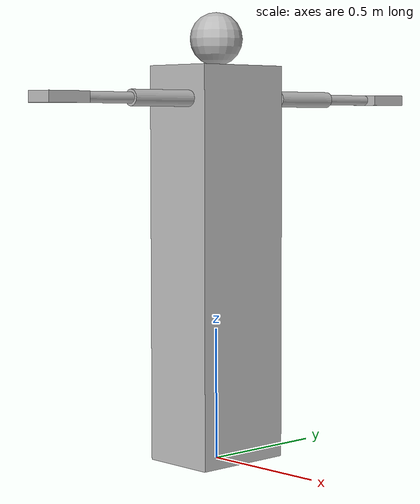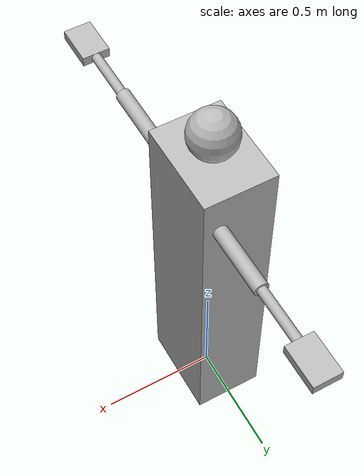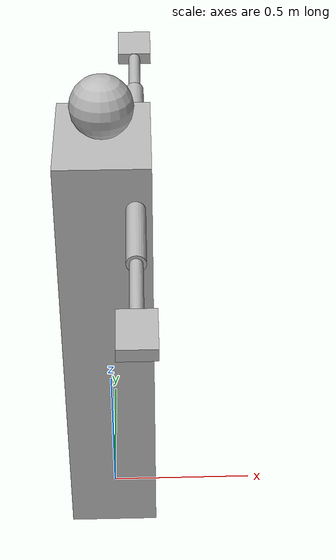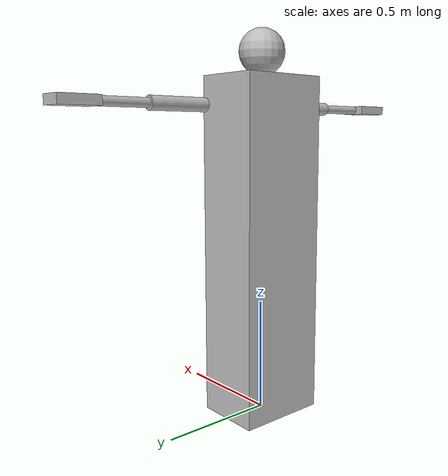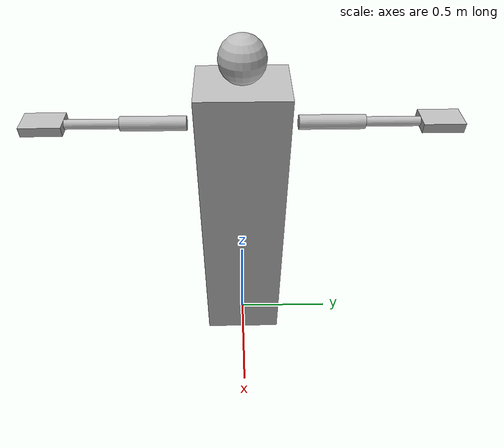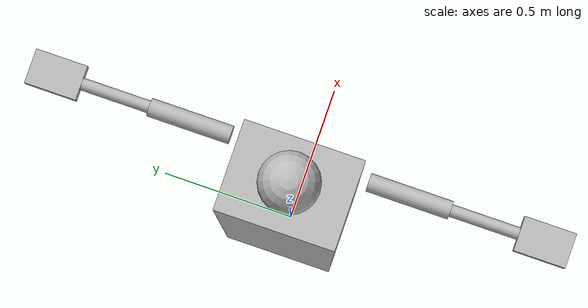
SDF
<sdf version='1.7'>
  <model name='human_model'>
  <pose>0 0 0.75 0 -0 0</pose>
    <link name='Truck'>
      <inertial>
        <pose>0 0 0.038437 0 -0 0</pose>
        <mass>63.2104</mass>
        <inertia>
          <ixx>2.05031</ixx>
          <ixy>0</ixy>
          <ixz>0</ixz>
          <iyy>2.01004</iyy>
          <iyz>0</iyz>
          <izz>0.08716</izz>
        </inertia>
      </inertial>
      <collision name='Truck_collision'>
        <pose>0 0 0 0 -0 0</pose>
        <geometry>
          <box>
            <size>0.3 0.4 1.5</size>
          </box>
        </geometry>
      </collision>
      <collision name='Truck_fixed_joint_lump__Head_collision_1'>
        <pose>0 0 0.85 0 -0 0</pose>
        <geometry>
          <sphere>
            <radius>0.1</radius>
          </sphere>
        </geometry>
      </collision>
      <visual name='Truck_visual'>
        <pose>0 0 0 0 -0 0</pose>
        <geometry>
          <box>
            <size>0.3 0.4 1.5</size>
          </box>
        </geometry>
      </visual>
      <visual name='Truck_fixed_joint_lump__Head_visual_1'>
        <pose>0 0 0.85 0 -0 0</pose>
        <geometry>
          <sphere>
            <radius>0.1</radius>
          </sphere>
        </geometry>
      </visual>
    </link>
    <joint name='jLeftShoulder_rotx' type='revolute'>
      <pose relative_to='Truck'>0.1 0.23 0.625 0 -0 0</pose>
      <parent>Truck</parent>
      <child>LeftUpperArm_f1</child>
      <axis>
        <xyz>1 0 0</xyz>
        <limit>
          <lower>-1.5708</lower>
          <upper>2.35619</upper>
          <effort>30</effort>
          <velocity>1</velocity>
        </limit>
        <dynamics>
          <damping>0.1</damping>
          <friction>0</friction>
          <spring_reference>0</spring_reference>
          <spring_stiffness>0</spring_stiffness>
        </dynamics>
      </axis>
    </joint>
    <link name='LeftUpperArm_f1'>
    <gravity>false</gravity>
      <pose relative_to='jLeftShoulder_rotx'>0 0 0 0 -0 0</pose>
      <inertial>
        <pose>0 0 0 0 -0 0</pose>
        <mass>2.382</mass>
        <inertia>
          <ixx>0.015417</ixx>
          <ixy>0</ixy>
          <ixz>0</ixz>
          <iyy>0.0010729</iyy>
          <iyz>0</iyz>
          <izz>0.015417</izz>
        </inertia>
      </inertial>
    </link>
    <joint name='jLeftShoulder_roty' type='revolute'>
      <pose relative_to='LeftUpperArm_f1'>0 0 0 0 -0 0</pose>
      <parent>LeftUpperArm_f1</parent>
      <child>LeftUpperArm_f2</child>
      <axis>
        <xyz>0 1 0</xyz>
        <limit>
          <lower>-1.5708</lower>
          <upper>1.5708</upper>
          <effort>30</effort>
          <velocity>1</velocity>
        </limit>
        <dynamics>
          <damping>0.1</damping>
          <friction>0</friction>
          <spring_reference>0</spring_reference>
          <spring_stiffness>0</spring_stiffness>
        </dynamics>
      </axis>
    </joint>
    <link name='LeftUpperArm_f2'>
    <gravity>false</gravity>
      <pose relative_to='jLeftShoulder_roty'>0 0 0 0 -0 0</pose>
      <inertial>
        <pose>0 0 0 0 -0 0</pose>
        <mass>2.382</mass>
        <inertia>
          <ixx>0.015417</ixx>
          <ixy>0</ixy>
          <ixz>0</ixz>
          <iyy>0.0010729</iyy>
          <iyz>0</iyz>
          <izz>0.015417</izz>
        </inertia>
      </inertial>
    </link>
    <joint name='jLeftShoulder_rotz' type='revolute'>
      <pose relative_to='LeftUpperArm_f2'>0 0 0 0 -0 0</pose>
      <parent>LeftUpperArm_f2</parent>
      <child>LeftUpperArm_f3</child>
      <axis>
        <xyz>0 0 1</xyz>
        <limit>
          <lower>-3.14159</lower>
          <upper>0.785398</upper>
          <effort>30</effort>
          <velocity>1</velocity>
        </limit>
        <dynamics>
          <damping>0.1</damping>
          <friction>0</friction>
          <spring_reference>0</spring_reference>
          <spring_stiffness>0</spring_stiffness>
        </dynamics>
      </axis>
    </joint>

    <link name='LeftUpperArm_f3'>
    <gravity>false</gravity>
      <pose relative_to='jLeftShoulder_rotz'>0 0 0 0 0 0</pose>
      <inertial>
        <pose>0 0 0 0 0 0</pose>
        <mass>2.382</mass>
        <inertia>
          <ixx>0.015417</ixx>
          <ixy>0</ixy>
          <ixz>0</ixz>
          <iyy>0.0010729</iyy>
          <iyz>0</iyz>
          <izz>0.015417</izz>
        </inertia>
      </inertial>
    </link>

    <joint name='jLeftShoulder_fixed' type='fixed'>
      <pose relative_to='LeftUpperArm_f3'>0 0.1369 0 1.5708 -0 0</pose>
      <parent>LeftUpperArm_f3</parent>
      <child>LeftUpperArm</child>
    </joint>

    <link name='LeftUpperArm'>
      <gravity>false</gravity>
      <pose relative_to='jLeftShoulder_fixed'>0 0 0 0 -0 0</pose>
      <inertial>
        <pose>0 0.1369 0 0 -0 0</pose>
        <mass>2.382</mass>
        <inertia>
          <ixx>0.015417</ixx>
          <ixy>0</ixy>
          <ixz>0</ixz>
          <iyy>0.0010729</iyy>
          <iyz>0</iyz>
          <izz>0.015417</izz>
        </inertia>
      </inertial>
      <collision name='LeftUpperArm_collision'>
        <pose>0 0 0 0 0 0</pose>
        <geometry>
          <cylinder>
            <length>0.27379</length>
            <radius>0.030014</radius>
          </cylinder>
        </geometry>
      </collision>
      <visual name='LeftUpperArm_visual'>
        <pose>0 0 0 0 0 0</pose>
        <geometry>
          <cylinder>
            <length>0.27379</length>
            <radius>0.030014</radius>
          </cylinder>
        </geometry>
      </visual>
    </link>

    <joint name='jLeftElbow_roty' type='revolute'>
      <pose relative_to='LeftUpperArm_f3'>0 0.27379 0 0 -0 0</pose>
      <parent>LeftUpperArm_f3</parent>
      <child>LeftForeArm_f1</child>
      <axis>
        <xyz>0 1 0</xyz>
        <limit>
          <lower>-1.5708</lower>
          <upper>1.48353</upper>
          <effort>30</effort>
          <velocity>1</velocity>
        </limit>
        <dynamics>
          <damping>0.1</damping>
          <friction>0</friction>
          <spring_reference>0</spring_reference>
          <spring_stiffness>0</spring_stiffness>
        </dynamics>
      </axis>
    </joint>

    <link name='LeftForeArm_f1'>
    <gravity>false</gravity>
      <pose relative_to='jLeftElbow_roty'>0 0 0 0 -0 0</pose>
      <inertial>
        <pose>0 0.11359 0 0 -0 0</pose>
        <mass>1.588</mass>
        <inertia>
          <ixx>0.0069888</ixx>
          <ixy>0</ixy>
          <ixz>0</ixz>
          <iyy>0.0003179</iyy>
          <iyz>0</iyz>
          <izz>0.0069888</izz>
        </inertia>
      </inertial>
    </link>

    <joint name='jLeftElbow_rotz' type='revolute'>
      <pose relative_to='LeftForeArm_f1'>0 0 0 0 -0 0</pose>
      <parent>LeftForeArm_f1</parent>
      <child>LeftForeArm_f2</child>
      <axis>
        <xyz>0 0 1</xyz>
        <limit>
          <lower>-2.53073</lower>
          <upper>0</upper>
          <effort>30</effort>
          <velocity>1</velocity>
        </limit>
        <dynamics>
          <damping>0.1</damping>
          <friction>0</friction>
          <spring_reference>0</spring_reference>
          <spring_stiffness>0</spring_stiffness>
        </dynamics>
      </axis>
    </joint>

    <link name='LeftForeArm_f2'>
      <gravity>false</gravity>
      <pose relative_to='jLeftElbow_rotz'>0 0 0 0 0 0</pose>
      <inertial>
        <pose>0 0 0 0 0 0</pose>
        <mass>1.588</mass>
        <inertia>
          <ixx>0.015417</ixx>
          <ixy>0</ixy>
          <ixz>0</ixz>
          <iyy>0.0010729</iyy>
          <iyz>0</iyz>
          <izz>0.015417</izz>
        </inertia>
      </inertial>
    </link>

    <joint name='jLeftElbow_fixed' type='fixed'>
      <pose relative_to='LeftForeArm_f2'>0 0.11359 0 1.5708 -0 0</pose>
      <parent>LeftForeArm_f2</parent>
      <child>LeftForeArm</child>
    </joint>

    <link name='LeftForeArm'>
      <gravity>false</gravity>
      <pose relative_to='jLeftElbow_fixed'>0 0 0 0 -0 0</pose>
      <inertial>
        <pose>0 0 0 0 -0 0</pose>
        <mass>1.588</mass>
        <inertia>
          <ixx>0.0069888</ixx>
          <ixy>0</ixy>
          <ixz>0</ixz>
          <iyy>0.0003179</iyy>
          <iyz>0</iyz>
          <izz>0.0069888</izz>
        </inertia>
      </inertial>
      <collision name='LeftForeArm_collision'>
        <pose>0 0 0 0 0 0</pose>
        <geometry>
          <cylinder>
            <length>0.22718</length>
            <radius>0.020009</radius>
          </cylinder>
        </geometry>
      </collision>
      <visual name='LeftForeArm_visual'>
        <pose>0 0 0 0 0 0</pose>
        <geometry>
          <cylinder>
            <length>0.22718</length>
            <radius>0.020009</radius>
          </cylinder>
        </geometry>
      </visual>
    </link>

    <joint name='jLeftWrist_rotx' type='revolute'>
      <pose relative_to='LeftForeArm_f2'>0.000133 0.22718 0 0 -0 0</pose>
      <parent>LeftForeArm_f2</parent>
      <child>LeftHand_f1</child>
      <axis>
        <xyz>1 0 0</xyz>
        <limit>
          <lower>-1.0472</lower>
          <upper>0.872665</upper>
          <effort>30</effort>
          <velocity>1</velocity>
        </limit>
        <dynamics>
          <damping>0.1</damping>
          <friction>0</friction>
          <spring_reference>0</spring_reference>
          <spring_stiffness>0</spring_stiffness>
        </dynamics>
      </axis>
    </joint>
    <link name='LeftHand_f1'>
    <gravity>false</gravity>
      <pose relative_to='jLeftWrist_rotx'>0 0 0 0 -0 0</pose>
      <inertial>
        <pose>0 0.086009 0 0 -0 0</pose>
        <mass>0.4764</mass>
        <inertia>
          <ixx>0.0012383</ixx>
          <ixy>0</ixy>
          <ixz>0</ixz>
          <iyy>0.00058568</iyy>
          <iyz>0</iyz>
          <izz>0.0016968</izz>
        </inertia>
      </inertial>
    </link>
    <joint name='jLeftWrist_rotz' type='revolute'>
      <pose relative_to='LeftHand_f1'>0 0 0 0 -0 0</pose>
      <parent>LeftHand_f1</parent>
      <child>LeftHand_f2</child>
      <axis>
        <xyz>0 0 1</xyz>
        <limit>
          <lower>-0.349066</lower>
          <upper>0.523599</upper>
          <effort>30</effort>
          <velocity>1</velocity>
        </limit>
        <dynamics>
          <damping>0.1</damping>
          <friction>0</friction>
          <spring_reference>0</spring_reference>
          <spring_stiffness>0</spring_stiffness>
        </dynamics>
      </axis>
    </joint>

    <link name='LeftHand_f2'>
      <gravity>false</gravity>
      <pose relative_to='jLeftWrist_rotz'>0 0 0 0 0 0</pose>
      <inertial>
        <pose>0 0.086009 0 0 -0 0</pose>
        <mass>0.4764</mass>
        <inertia>
          <ixx>0.0012383</ixx>
          <ixy>0</ixy>
          <ixz>0</ixz>
          <iyy>0.00058568</iyy>
          <iyz>0</iyz>
          <izz>0.0016968</izz>
        </inertia>
      </inertial>
    </link>

    <joint name='jLeftWrist_fixed' type='fixed'>
      <pose relative_to='LeftHand_f1'>0 0.086009 0 0 -0 0</pose>
      <parent>LeftHand_f2</parent>
      <child>LeftHand</child>
    </joint>

    <link name='LeftHand'>
    <gravity>false</gravity>
      <pose relative_to='jLeftWrist_fixed'>0 0 0 0 -0 0</pose>
      <inertial>
        <pose>0 0 0 0 -0 0</pose>
        <mass>0.4764</mass>
        <inertia>
          <ixx>0.0012383</ixx>
          <ixy>0</ixy>
          <ixz>0</ixz>
          <iyy>0.00058568</iyy>
          <iyz>0</iyz>
          <izz>0.0016968</izz>
        </inertia>
      </inertial>
      <collision name='LeftHand_collision'>
        <pose>0 0 0 0 0 0</pose>
        <geometry>
          <box>
            <size>0.11468 0.17202 0.040019</size>
          </box>
        </geometry>
      </collision>
      <visual name='LeftHand_visual'>
        <pose>0 0 0 0 0 0</pose>
        <geometry>
          <box>
            <size>0.11468 0.17202 0.040019</size>
          </box>
        </geometry>
      </visual>
    </link>

    <!-- Right -->

    <joint name='jRightShoulder_rotx' type='revolute'>
      <pose relative_to='Truck'>0.1 -0.23 0.625 0 -0 0</pose>
      <parent>Truck</parent>
      <child>RightUpperArm_f1</child>
      <axis>
        <xyz>1 0 0</xyz>
        <limit>
          <lower>-2.35619</lower>
          <upper>1.5708</upper>
          <effort>30</effort>
          <velocity>1</velocity>
        </limit>
        <dynamics>
          <damping>0.1</damping>
          <friction>0</friction>
          <spring_reference>0</spring_reference>
          <spring_stiffness>0</spring_stiffness>
        </dynamics>
      </axis>
    </joint>

    <link name='RightUpperArm_f1'>
    <gravity>false</gravity>
      <pose relative_to='jRightShoulder_rotx'>0 0 0 0 -0 0</pose>
      <inertial>
        <pose>0 0 0 0 -0 0</pose>
        <mass>2.382</mass>
        <inertia>
          <ixx>0.015417</ixx>
          <ixy>0</ixy>
          <ixz>0</ixz>
          <iyy>0.0010729</iyy>
          <iyz>0</iyz>
          <izz>0.015417</izz>
        </inertia>
      </inertial>
    </link>

    <joint name='jRightShoulder_roty' type='revolute'>
      <pose relative_to='RightUpperArm_f1'>0 0 0 0 -0 0</pose>
      <parent>RightUpperArm_f1</parent>
      <child>RightUpperArm_f2</child>
      <axis>
        <xyz>0 1 0</xyz>
        <limit>
          <lower>-1.5708</lower>
          <upper>1.5708</upper>
          <effort>30</effort>
          <velocity>1</velocity>
        </limit>
        <dynamics>
          <damping>0.1</damping>
          <friction>0</friction>
          <spring_reference>0</spring_reference>
          <spring_stiffness>0</spring_stiffness>
        </dynamics>
      </axis>
    </joint>

    <link name='RightUpperArm_f2'>
    <gravity>false</gravity>
      <pose relative_to='jRightShoulder_roty'>0 0 0 0 -0 0</pose>
      <inertial>
        <pose>0 0 0 0 -0 0</pose>
        <mass>2.382</mass>
        <inertia>
          <ixx>0.015417</ixx>
          <ixy>0</ixy>
          <ixz>0</ixz>
          <iyy>0.0010729</iyy>
          <iyz>0</iyz>
          <izz>0.015417</izz>
        </inertia>
      </inertial>
    </link>

    <joint name='jRightShoulder_rotz' type='revolute'>
      <pose relative_to='RightUpperArm_f2'>0 0 0 0 -0 0</pose>
      <parent>RightUpperArm_f2</parent>
      <child>RightUpperArm_f3</child>
      <axis>
        <xyz>0 0 1</xyz>
        <limit>
          <lower>-0.785398</lower>
          <upper>3.14159</upper>
          <effort>30</effort>
          <velocity>1</velocity>
        </limit>
        <dynamics>
          <damping>0.1</damping>
          <friction>0</friction>
          <spring_reference>0</spring_reference>
          <spring_stiffness>0</spring_stiffness>
        </dynamics>
      </axis>
    </joint>

    <link name='RightUpperArm_f3'>
      <gravity>false</gravity>
      <pose relative_to='jRightShoulder_rotz'>0 0 0 0 -0 0</pose>
      <inertial>
        <pose>0 0 0 0 -0 0</pose>
        <mass>2.382</mass>
        <inertia>
          <ixx>0.015417</ixx>
          <ixy>0</ixy>
          <ixz>0</ixz>
          <iyy>0.0010729</iyy>
          <iyz>0</iyz>
          <izz>0.015417</izz>
        </inertia>
      </inertial>
    </link>

    <joint name='jRightShoulder_fixed' type='fixed'>
      <pose relative_to='RightUpperArm_f3'>0 -0.1369 0 1.5708 -0 0</pose>
      <parent>RightUpperArm_f3</parent>
      <child>RightUpperArm</child>
    </joint>

    <link name='RightUpperArm'>
    <gravity>false</gravity>
      <pose relative_to='jRightShoulder_fixed'>0 0 0 0 -0 0</pose>
      <inertial>
        <pose>0 -0.1369 0 0 -0 0</pose>
        <mass>2.382</mass>
        <inertia>
          <ixx>0.015417</ixx>
          <ixy>0</ixy>
          <ixz>0</ixz>
          <iyy>0.0010729</iyy>
          <iyz>0</iyz>
          <izz>0.015417</izz>
        </inertia>
      </inertial>
      <collision name='RightUpperArm_collision'>
        <pose>0 0 0 0 0 0</pose>
        <geometry>
          <cylinder>
            <length>0.27379</length>
            <radius>0.030014</radius>
          </cylinder>
        </geometry>
      </collision>
      <visual name='RightUpperArm_visual'>
        <pose>0 0 0 0 0 0</pose>
        <geometry>
          <cylinder>
            <length>0.27379</length>
            <radius>0.030014</radius>
          </cylinder>
        </geometry>
      </visual>
    </link>

    <joint name='jRightElbow_roty' type='revolute'>
      <pose relative_to='RightUpperArm_f3'>0 -0.27379 0 0 -0 0</pose>
      <parent>RightUpperArm_f3</parent>
      <child>RightForeArm_f1</child>
      <axis>
        <xyz>0 1 0</xyz>
        <limit>
          <lower>-1.5708</lower>
          <upper>1.48353</upper>
          <effort>30</effort>
          <velocity>1</velocity>
        </limit>
        <dynamics>
          <damping>0.1</damping>
          <friction>0</friction>
          <spring_reference>0</spring_reference>
          <spring_stiffness>0</spring_stiffness>
        </dynamics>
      </axis>
    </joint>

    <link name='RightForeArm_f1'>
    <gravity>false</gravity>
      <pose relative_to='jRightElbow_roty'>0 0 0 0 -0 0</pose>
      <inertial>
        <pose>0 0 0 0 -0 0</pose>
        <mass>1.588</mass>
        <inertia>
          <ixx>0.0069888</ixx>
          <ixy>0</ixy>
          <ixz>0</ixz>
          <iyy>0.0003179</iyy>
          <iyz>0</iyz>
          <izz>0.0069888</izz>
        </inertia>
      </inertial>
    </link>

    <joint name='jRightElbow_rotz' type='revolute'>
      <pose relative_to='RightForeArm_f1'>0 0 0 0 -0 0</pose>
      <parent>RightForeArm_f1</parent>
      <child>RightForeArm_f2</child>
      <axis>
        <xyz>0 0 1</xyz>
        <limit>
          <lower>0</lower>
          <upper>2.53073</upper>
          <effort>30</effort>
          <velocity>1</velocity>
        </limit>
        <dynamics>
          <damping>0.1</damping>
          <friction>0</friction>
          <spring_reference>0</spring_reference>
          <spring_stiffness>0</spring_stiffness>
        </dynamics>
      </axis>
    </joint>

    <link name='RightForeArm_f2'>
      <gravity>false</gravity>
      <pose relative_to='jRightElbow_rotz'>0 0 0 0 -0 0</pose>
      <inertial>
        <pose>0 0 0 0 -0 0</pose>
        <mass>1.588</mass>
        <inertia>
          <ixx>0.0069888</ixx>
          <ixy>0</ixy>
          <ixz>0</ixz>
          <iyy>0.0003179</iyy>
          <iyz>0</iyz>
          <izz>0.0069888</izz>
        </inertia>
      </inertial>
    </link>

    <joint name='jRightElbow_fixed' type='fixed'>
      <pose relative_to='RightForeArm_f2'>0 -0.11359 0 1.5708 -0 0</pose>
      <parent>RightForeArm_f2</parent>
      <child>RightForeArm</child>
    </joint>

    <link name='RightForeArm'>
    <gravity>false</gravity>
      <pose relative_to='jRightElbow_fixed'>0 0 0 0 -0 0</pose>
      <inertial>
        <pose>0 0 0 0 -0 0</pose>
        <mass>1.588</mass>
        <inertia>
          <ixx>0.0069888</ixx>
          <ixy>0</ixy>
          <ixz>0</ixz>
          <iyy>0.0003179</iyy>
          <iyz>0</iyz>
          <izz>0.0069888</izz>
        </inertia>
      </inertial>
      <collision name='RightForeArm_collision'>
        <pose>0 0 0 0 0 0</pose>
        <geometry>
          <cylinder>
            <length>0.22718</length>
            <radius>0.020009</radius>
          </cylinder>
        </geometry>
      </collision>
      <visual name='RightForeArm_visual'>
        <pose>0 0 0 0 0 0</pose>
        <geometry>
          <cylinder>
            <length>0.22718</length>
            <radius>0.020009</radius>
          </cylinder>
        </geometry>
      </visual>
    </link>

    <joint name='jRightWrist_rotx' type='revolute'>
      <pose relative_to='RightForeArm_f2'>0.000133 -0.22718 0 0 -0 0</pose>
      <parent>RightForeArm_f2</parent>
      <child>RightHand_f1</child>
      <axis>
        <xyz>1 0 0</xyz>
        <limit>
          <lower>-0.872665</lower>
          <upper>1.0472</upper>
          <effort>30</effort>
          <velocity>1</velocity>
        </limit>
        <dynamics>
          <damping>0.1</damping>
          <friction>0</friction>
          <spring_reference>0</spring_reference>
          <spring_stiffness>0</spring_stiffness>
        </dynamics>
      </axis>
    </joint>

    <link name='RightHand_f1'>
    <gravity>false</gravity>
      <pose relative_to='jRightWrist_rotx'>0 0 0 0 -0 0</pose>
      <inertial>
        <pose>0 0 0 0 -0 0</pose>
        <mass>0.4764</mass>
        <inertia>
          <ixx>0.0012383</ixx>
          <ixy>0</ixy>
          <ixz>0</ixz>
          <iyy>0.00058568</iyy>
          <iyz>0</iyz>
          <izz>0.0016968</izz>
        </inertia>
      </inertial>
    </link>

    <joint name='jRightWrist_rotz' type='revolute'>
      <pose relative_to='RightHand_f1'>0 0 0 0 -0 0</pose>
      <parent>RightHand_f1</parent>
      <child>RightHand_f2</child>
      <axis>
        <xyz>0 0 1</xyz>
        <limit>
          <lower>-0.523599</lower>
          <upper>0.349066</upper>
          <effort>30</effort>
          <velocity>1</velocity>
        </limit>
        <dynamics>
          <damping>0.1</damping>
          <friction>0</friction>
          <spring_reference>0</spring_reference>
          <spring_stiffness>0</spring_stiffness>
        </dynamics>
      </axis>
    </joint>

    <link name='RightHand_f2'>
    <gravity>false</gravity>
      <pose relative_to='jRightWrist_rotz'>0 0 0 0 -0 0</pose>
      <inertial>
        <pose>0 0 0 0 -0 0</pose>
        <mass>0.4764</mass>
        <inertia>
          <ixx>0.0012383</ixx>
          <ixy>0</ixy>
          <ixz>0</ixz>
          <iyy>0.00058568</iyy>
          <iyz>0</iyz>
          <izz>0.0016968</izz>
        </inertia>
      </inertial>
    </link>

    <joint name='jRightWrist_fixed' type='fixed'>
      <pose relative_to='RightHand_f2'>0 -0.086009 0 0 -0 0</pose>
      <parent>RightHand_f2</parent>
      <child>RightHand</child>

    </joint>

    <link name='RightHand'>
    <gravity>false</gravity>
      <pose relative_to='jRightWrist_fixed'>0 0 0 0 -0 0</pose>
      <inertial>
        <pose>0 0 0 0 -0 0</pose>
        <mass>0.4764</mass>
        <inertia>
          <ixx>0.0012383</ixx>
          <ixy>0</ixy>
          <ixz>0</ixz>
          <iyy>0.00058568</iyy>
          <iyz>0</iyz>
          <izz>0.0016968</izz>
        </inertia>
      </inertial>
      <collision name='RightHand_collision'>
        <pose>0 0 0 0 0 0</pose>
        <geometry>
          <box>
            <size>0.11468 0.17202 0.040019</size>
          </box>
        </geometry>
      </collision>
      <visual name='RightHand_visual'>
        <pose>0 0 0 0 0 0</pose>
        <geometry>
          <box>
            <size>0.11468 0.17202 0.040019</size>
          </box>
        </geometry>
      </visual>
    </link>

    <self_collide>false</self_collide>
    <plugin name="bound_random_move" filename="libjoint_control.so"/>
  </model>
</sdf>
